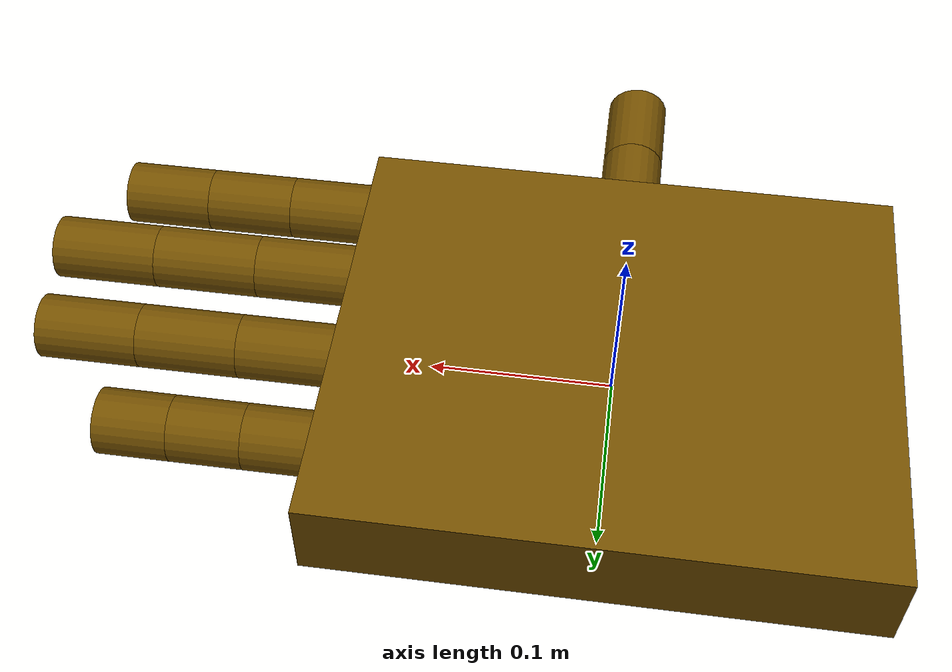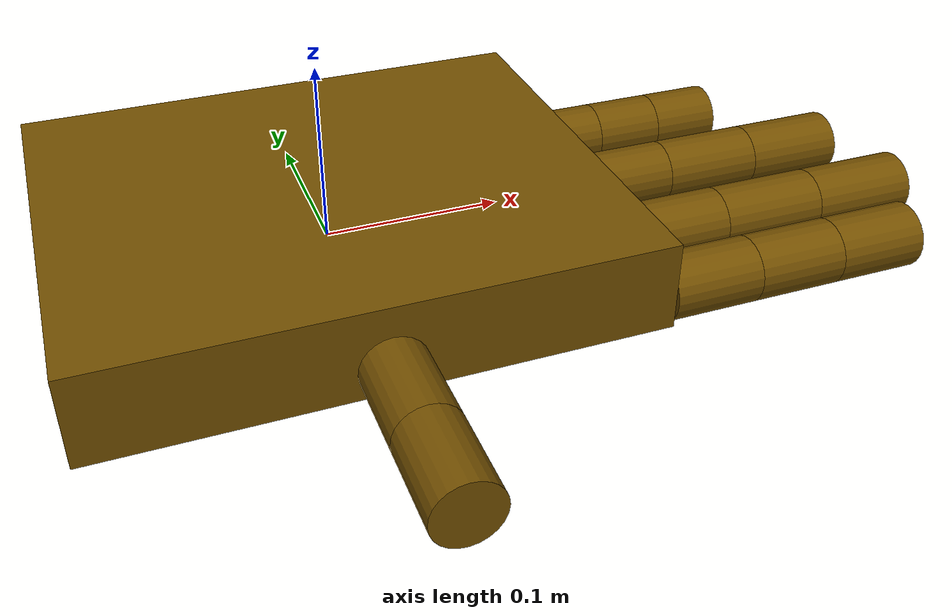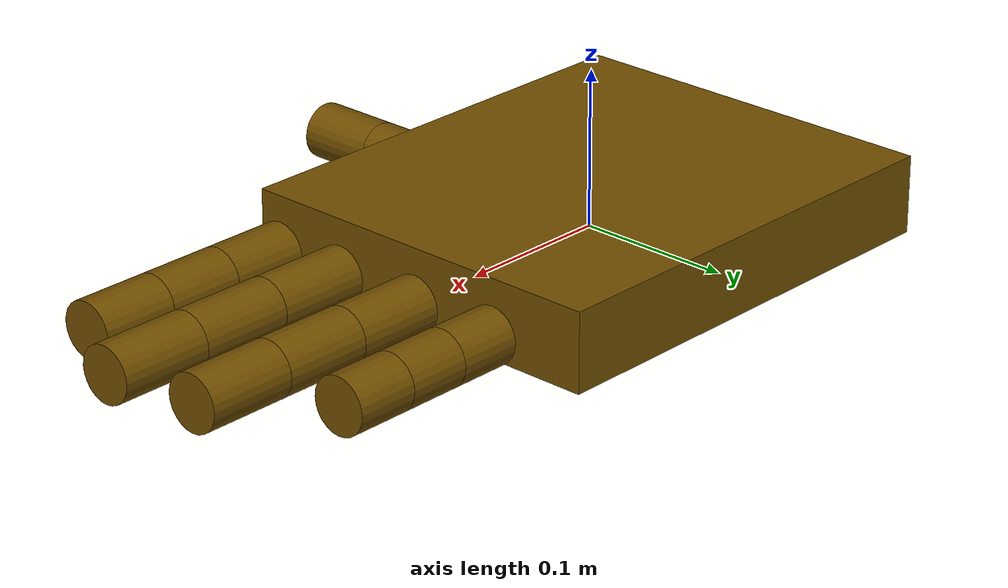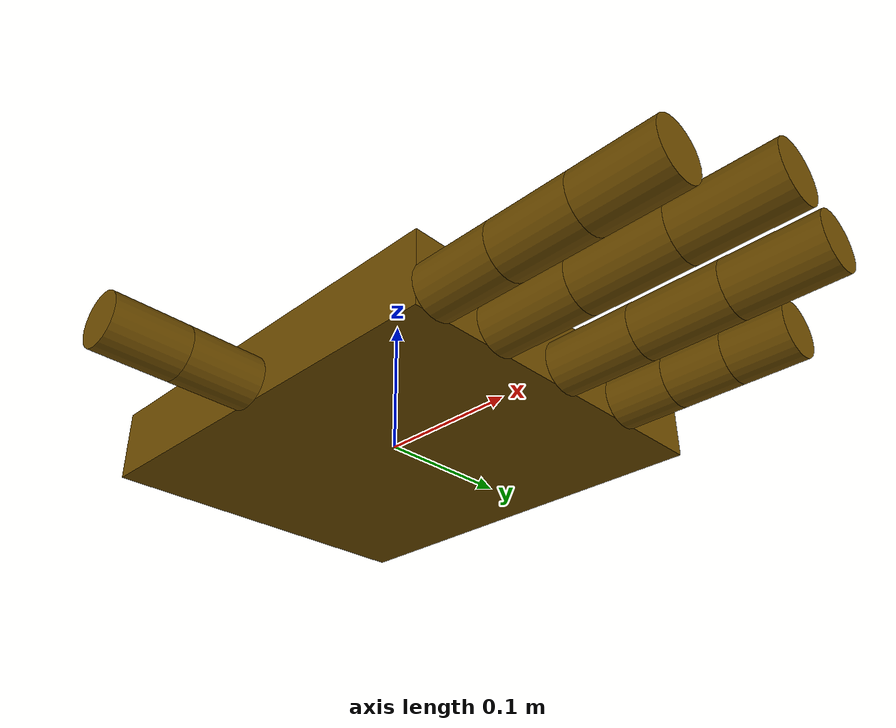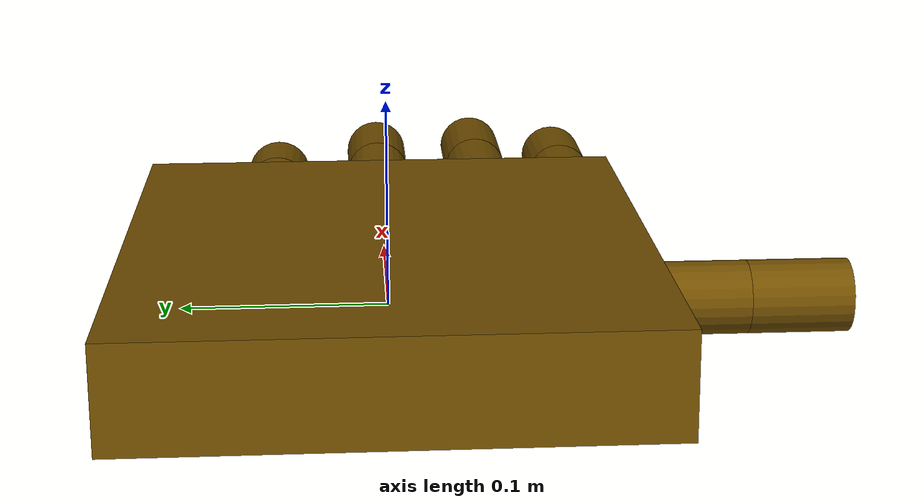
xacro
<?xml version="1.0"?>
<robot name="robotic_hand" xmlns:xacro="http://www.ros.org/wiki/xacro">
        <!-- includes -->
        <xacro:include filename="color_gazebo.xacro" />
        <!-- Variables -->
        <xacro:property name="base_length" value="0.3" />
        <xacro:property name="base_width" value="0.25" />
        <xacro:property name="base_height" value="0.05" />
        <xacro:property name="radius" value="0.018" />
        <xacro:property name="Index_length" value="0.05" />
        <xacro:property name="Middle_length" value="0.06" />
        <xacro:property name="Ring_length" value="0.057" />
        <xacro:property name="Pinky_length" value="0.04" />
        <xacro:property name="Thumb_length" value="0.05" />
        <!-- Macros -->
        <xacro:macro name="base_inertia" params="m l w h xyz rpy">
            <inertial>
                <origin xyz="${xyz}" rpy="${rpy}" />
                <mass value="${m}" />
                <inertia ixx="${(m/12) * (h*h + l*l)}" ixy="0" ixz="0"
                         iyy="${(m/12) * (w*w + l*l)}" iyz="0"
                         izz="${(m/12) * (w*w + h*h)}" />
            </inertial>
        </xacro:macro>

        <xacro:macro name="finger_inertia" params="m r h xyz rpy">
            <inertial>
                <origin xyz="${xyz}" rpy="${rpy}" />
                <mass value="${m}" />
                <inertia ixx="${(m/12) * (3*(r*r) + (h*h))}" ixy="0" ixz="0"
                         iyy="${(m/12) * (3*(r*r) + (h*h))}" iyz="0"
                         izz="${(m/2) * (r*r)}" />
            </inertial>
        </xacro:macro>

        <!-- Common Properties -->
        <material name="Wood">
            <!-- Normalize the color values to [0.0, 1.0] -->
            <color rgba="0.444 0.306 0.0 1.0" />
        </material>

        <!-- =============== Robotic hand =============== -->
        <link name="base_link">
            <visual>
                <geometry>
                    <box size="${base_length} ${base_width} ${base_height}" />
                </geometry>
                <origin xyz="0 0 0.01" rpy="0 0 0" />
                <material name="Wood" />
            </visual>
            <collision>
                <geometry>
                    <box size="${base_length} ${base_width} ${base_height}" />
                </geometry>
                <origin xyz="0 0 0.01" rpy="0 0 0" />
            </collision>
            <xacro:base_inertia m="0.2" l="${base_length}" w="${base_width}" h="${base_height}"
                                xyz="0 0 0.01" rpy="0 0 0" />
        </link>

<!-- Index Finger -->

        <link name="Index1_link">
            <visual>
                <geometry>
                    <cylinder radius="${radius}" length="${Index_length}" />
                </geometry>
                <origin xyz="${Index_length / 2.0} 0 0" rpy="0 ${pi / 2.0} 0" />
                <material name="Wood" />
            </visual>
            <collision>
                <geometry>
                    <cylinder radius="${radius}" length="${Index_length}" />
                </geometry>
                <origin xyz="${Index_length / 2.0} 0 0" rpy="0 ${pi / 2.0} 0" />
            </collision>
            <xacro:finger_inertia m="0.05" r="${radius}" h="${Index_length}"
                                xyz="${Index_length / 2.0} 0 0" rpy="0 ${pi / 2.0} 0" />
        </link>

        <joint name="Index_finger" type="revolute">
            <parent link="base_link" />
            <child link="Index1_link" />
            <origin xyz="${base_length / 2} -0.11 0" rpy="0 0 0" />
            <axis xyz="0 1 0" />
            <limit lower="0" upper="-0.785" effort="100" velocity="100" />
        </joint>

        <link name="Index2_link">
            <visual>
                <geometry>
                    <cylinder radius="${radius}" length="${Index_length}" />
                </geometry>
                <origin xyz="${Index_length / 2.0} 0 0" rpy="0 ${pi / 2.0} 0" />
                <material name="Wood" />
            </visual>
            <collision>
                <geometry>
                    <cylinder radius="${radius}" length="${Index_length}" />
                </geometry>
                <origin xyz="${Index_length / 2.0} 0 0" rpy="0 ${pi / 2.0} 0" />
            </collision>
            <xacro:finger_inertia m="0.05" r="${radius}" h="${Index_length}"
                                xyz="${Index_length / 2.0} 0 0" rpy="0 ${pi / 2.0} 0" />
        </link>

        <joint name="Index1_Index2_joint" type="revolute">
            <parent link="Index1_link" />
            <child link="Index2_link" />
            <origin xyz="${Index_length} 0 0" rpy="0 0 0" />
            <axis xyz="0 1 0" />
            <limit lower="0" upper="-0.785" effort="100" velocity="100" />
            <mimic joint="Index_finger" multiplier="1.0" offset="0.0"/>
        </joint>

        <link name="Index3_link">
            <visual>
                <geometry>
                    <cylinder radius="${radius}" length="${Index_length}" />
                </geometry>
                <origin xyz="${Index_length / 2.0} 0 0" rpy="0 ${pi / 2.0} 0" />
                <material name="Wood" />
            </visual>
            <collision>
                <geometry>
                    <cylinder radius="${radius}" length="${Index_length}" />
                </geometry>
                <origin xyz="${Index_length / 2.0} 0 0" rpy="0 ${pi / 2.0} 0" />
            </collision>
            <xacro:finger_inertia m="0.05" r="${radius}" h="${Index_length}"
                                xyz="${Index_length / 2.0} 0 0" rpy="0 ${pi / 2.0} 0" />
        </link>

        <joint name="Index2_Index3_joint" type="revolute">
            <parent link="Index2_link" />
            <child link="Index3_link" />
            <origin xyz="${Index_length} 0 0" rpy="0 0 0" />
            <axis xyz="0 1 0" />
            <limit lower="0" upper="-0.785" effort="100" velocity="100" />
            <mimic joint="Index_finger" multiplier="1.0" offset="0.0"/>
        </joint>

<!-- Middle Finger -->

        <link name="Middle1_link">
            <visual>
                <geometry>
                    <cylinder radius="${radius}" length="${Middle_length}" />
                </geometry>
                <origin xyz="${Middle_length / 2.0} 0 0" rpy="0 ${pi / 2.0} 0" />
                <material name="Wood" />
            </visual>
            <collision>
                <geometry>
                    <cylinder radius="${radius}" length="${Middle_length}" />
                </geometry>
                <origin xyz="${Middle_length / 2.0} 0 0" rpy="0 ${pi / 2.0} 0" />
            </collision>
            <xacro:finger_inertia m="0.05" r="${radius}" h="${Middle_length}"
                                xyz="${Middle_length / 2.0} 0 0" rpy="0 ${pi / 2.0} 0" />
        </link>

        <joint name="Middle_finger" type="revolute">
            <parent link="base_link" />
            <child link="Middle1_link" />
            <origin xyz="${base_length / 2.0} -0.06 0" rpy="0 0 0" />
            <axis xyz="0 1 0" />
            <limit lower="0" upper="-0.785" effort="100" velocity="100" />
        </joint>

        <link name="Middle2_link">
            <visual>
                <geometry>
                    <cylinder radius="${radius}" length="${Middle_length}" />
                </geometry>
                <origin xyz="${Middle_length /2.0} 0 0" rpy="0 ${pi / 2.0} 0" />
                <material name="Wood" />
            </visual>
            <collision>
                <geometry>
                    <cylinder radius="${radius}" length="${Middle_length}" />
                </geometry>
                <origin xyz="${Middle_length /2.0} 0 0" rpy="0 ${pi / 2.0} 0" />
            </collision>
            <xacro:finger_inertia m="0.05" r="${radius}" h="${Middle_length}"
                                xyz="${Middle_length / 2.0} 0 0" rpy="0 ${pi / 2.0} 0" />
        </link>

        <joint name="Middle1_Middle2_joint" type="revolute">
            <parent link="Middle1_link" />
            <child link="Middle2_link" />
            <origin xyz="${Middle_length} 0 0" rpy="0 0 0" />
            <axis xyz="0 1 0" />
            <limit lower="0" upper="-0.785" effort="100" velocity="100" />
            <mimic joint="Middle_finger" multiplier="1.0" offset="0.0"/>
        </joint>

        <link name="Middle3_link">
            <visual>
                <geometry>
                    <cylinder radius="${radius}" length="${Middle_length}" />
                </geometry>
                <origin xyz="${Middle_length / 2.0} 0 0" rpy="0 ${pi / 2.0} 0" />
                <material name="Wood" />
            </visual>
            <collision>
                <geometry>
                    <cylinder radius="${radius}" length="${Middle_length}" />
                </geometry>
                <origin xyz="${Middle_length / 2.0} 0 0" rpy="0 ${pi / 2.0} 0" />
            </collision>
            <xacro:finger_inertia m="0.05" r="${radius}" h="${Middle_length}"
                                xyz="${Middle_length / 2.0} 0 0" rpy="0 ${pi / 2.0} 0" />
        </link>

        <joint name="Middle2_Middle3_joint" type="revolute">
            <parent link="Middle2_link" />
            <child link="Middle3_link" />
            <origin xyz="${Middle_length} 0 0" rpy="0 0 0" />
            <axis xyz="0 1 0" />
            <limit lower="0" upper="-0.785" effort="100" velocity="100" />
            <mimic joint="Middle_finger" multiplier="1.0" offset="0.0"/>
        </joint>

<!-- Ring Finger -->

        <link name="Ring1_link">
            <visual>
                <geometry>
                    <cylinder radius="${radius}" length="${Ring_length}" />
                </geometry>
                <origin xyz="${Ring_length / 2.0 } 0 0" rpy="0 ${pi / 2.0} 0" />
                <material name="Wood" />
            </visual>
            <collision>
                <geometry>
                    <cylinder radius="${radius}" length="${Ring_length}" />
                </geometry>
                <origin xyz="${Ring_length / 2.0 } 0 0" rpy="0 ${pi / 2.0} 0" />
            </collision>
            <xacro:finger_inertia m="0.05" r="${radius}" h="${Ring_length}"
                                xyz="${Ring_length / 2.0} 0 0" rpy="0 ${pi / 2.0} 0" />
        </link>

        <joint name="Ring_finger" type="revolute">
            <parent link="base_link" />
            <child link="Ring1_link" />
            <origin xyz="${base_length / 2.0} 0 0" rpy="0 0 0" />
            <axis xyz="0 1 0" />
            <limit lower="0" upper="-0.785" effort="100" velocity="100" />
        </joint>

        <link name="Ring2_link">
            <visual>
                <geometry>
                    <cylinder radius="${radius}" length="${Ring_length}" />
                </geometry>
                <origin xyz="${Ring_length / 2.0} 0 0" rpy="0 ${pi / 2.0} 0" />
                <material name="Wood" />
            </visual>
            <collision>
                <geometry>
                    <cylinder radius="${radius}" length="${Ring_length}" />
                </geometry>
                <origin xyz="${Ring_length / 2.0} 0 0" rpy="0 ${pi / 2.0} 0" />
            </collision>
            <xacro:finger_inertia m="0.05" r="${radius}" h="${Ring_length}"
                                xyz="${Ring_length / 2.0} 0 0" rpy="0 ${pi / 2.0} 0" />
        </link>

        <joint name="Ring1_Ring2_joint" type="revolute">
            <parent link="Ring1_link" />
            <child link="Ring2_link" />
            <origin xyz="${Ring_length} 0 0" rpy="0 0 0" />
            <axis xyz="0 1 0" />
            <limit lower="0" upper="-0.785" effort="100" velocity="100" />
            <mimic joint="Ring_finger" multiplier="1.0" offset="0.0"/>
        </joint>

        <link name="Ring3_link">
            <visual>
                <geometry>
                    <cylinder radius="${radius}" length="${Ring_length}" />
                </geometry>
                <origin xyz="${Ring_length / 2} 0 0" rpy="0 ${pi / 2.0} 0" />
                <material name="Wood" />
            </visual>
            <collision>
                <geometry>
                    <cylinder radius="${radius}" length="${Ring_length}" />
                </geometry>
                <origin xyz="${Ring_length / 2} 0 0" rpy="0 ${pi / 2.0} 0" />
            </collision>
            <xacro:finger_inertia m="0.05" r="${radius}" h="${Ring_length}"
                                xyz="${Ring_length / 2.0} 0 0" rpy="0 ${pi / 2.0} 0" />
        </link>

        <joint name="Ring2_Ring3_joint" type="revolute">
            <parent link="Ring2_link" />
            <child link="Ring3_link" />
            <origin xyz="${Ring_length} 0 0" rpy="0 0 0" />
            <axis xyz="0 1 0" />
            <limit lower="0" upper="-0.785" effort="100" velocity="100" />
            <mimic joint="Ring_finger" multiplier="1.0" offset="0.0"/>
        </joint>
<!-- Pinky Finger -->

        <link name="Pinky1_link">
            <visual>
                <geometry>
                    <cylinder radius="${radius}" length="${Pinky_length}" />
                </geometry>
                <origin xyz="${Pinky_length / 2.0} 0 0" rpy="0 ${pi / 2.0} 0" />
                <material name="Wood" />
            </visual>
            <collision>
                <geometry>
                    <cylinder radius="${radius}" length="${Pinky_length}" />
                </geometry>
                <origin xyz="${Pinky_length / 2.0} 0 0" rpy="0 ${pi / 2.0} 0" />
            </collision>
            <xacro:finger_inertia m="0.05" r="${radius}" h="${Pinky_length}"
                                xyz="${Pinky_length / 2.0} 0 0" rpy="0 ${pi / 2.0} 0" />
        </link>

        <joint name="Pinky_finger" type="revolute">
            <parent link="base_link" />
            <child link="Pinky1_link" />
            <origin xyz="${base_length / 2.0} 0.06 0" rpy="0 0 0" />
            <axis xyz="0 1 0" />
            <limit lower="0" upper="-0.785" effort="100" velocity="100" />
        </joint>

        <link name="Pinky2_link">
            <visual>
                <geometry>
                    <cylinder radius="${radius}" length="${Pinky_length}" />
                </geometry>
                <origin xyz="${Pinky_length / 2.0} 0 0" rpy="0 ${pi / 2.0} 0" />
                <material name="Wood" />
            </visual>
            <collision>
                <geometry>
                    <cylinder radius="${radius}" length="${Pinky_length}" />
                </geometry>
                <origin xyz="${Pinky_length / 2.0} 0 0" rpy="0 ${pi / 2.0} 0" />
            </collision>
            <xacro:finger_inertia m="0.05" r="${radius}" h="${Pinky_length}"
                                xyz="${Pinky_length / 2.0} 0 0" rpy="0 ${pi / 2.0} 0" />
        </link>

        <joint name="Pinky1_Pinky2_joint" type="revolute">
            <parent link="Pinky1_link" />
            <child link="Pinky2_link" />
            <origin xyz="${Pinky_length} 0 0" rpy="0 0 0" />
            <axis xyz="0 1 0" />
            <limit lower="0" upper="-0.785" effort="100" velocity="100" />
            <mimic joint="Pinky_finger" multiplier="1.0" offset="0.0"/>
        </joint>

        <link name="Pinky3_link">
            <visual>
                <geometry>
                    <cylinder radius="${radius}" length="${Pinky_length}" />
                </geometry>
                <origin xyz="${Pinky_length / 2.0} 0 0" rpy="0 ${pi / 2.0} 0" />
                <material name="Wood" />
            </visual>
            <collision>
                <geometry>
                    <cylinder radius="${radius}" length="${Pinky_length}" />
                </geometry>
                <origin xyz="${Pinky_length / 2.0} 0 0" rpy="0 ${pi / 2.0} 0" />
            </collision>
            <xacro:finger_inertia m="0.05" r="${radius}" h="${Pinky_length}"
                                xyz="${Pinky_length / 2.0} 0 0" rpy="0 ${pi / 2.0} 0" />
        </link>

        <joint name="Pinky2_Pinky3_joint" type="revolute">
            <parent link="Pinky2_link" />
            <child link="Pinky3_link" />
            <origin xyz="${Pinky_length} 0 0" rpy="0 0 0" />
            <axis xyz="0 1 0" />
            <limit lower="0" upper="-0.785" effort="100" velocity="100" />
            <mimic joint="Pinky_finger" multiplier="1.0" offset="0.0"/>
        </joint>
        <!-- Thumb Finger-->

        <link name="Thumb1_link">
            <visual>
                <geometry>
                    <cylinder radius="${radius}" length="${Thumb_length}"/>
                </geometry>
                <origin xyz="0 -${Thumb_length / 2.0} 0" rpy="${pi / 2} 0 0" />
                <material name="Wood" />
            </visual>
            <collision>
                <geometry>
                    <cylinder radius="${radius}" length="${Thumb_length}"/>
                </geometry>
                <origin xyz="0 -${Thumb_length / 2.0} 0" rpy="${pi / 2} 0 0" />
            </collision>
            <xacro:finger_inertia m="0.05" r="${radius}" h="${Thumb_length}"
                                xyz="0 ${-Thumb_length / 2.0} 0" rpy="${pi / 2.0} 0 0" />
        </link>
        <joint name="Thumb" type="revolute">
            <parent link="base_link" />
            <child link="Thumb1_link" />
            <origin xyz="0 ${-base_width /2.0} 0" rpy="0 0 0" />
            <axis xyz="1 0 0" />
            <limit lower="0" upper="-0.785" effort="100" velocity="100" />
        </joint>

        <link name="Thumb2_link">
            <visual>
                <geometry>
                    <cylinder radius="${radius}" length="${Thumb_length}" />
                </geometry>
                <origin xyz="0 ${-Thumb_length / 2.0} 0" rpy="${pi / 2} 0 0" />
                <material name="Wood" />
            </visual>
            <collision>
                <geometry>
                    <cylinder radius="${radius}" length="${Thumb_length}" />
                </geometry>
                <origin xyz="0 ${-Thumb_length / 2.0} 0" rpy="${pi / 2} 0 0" />
            </collision>
            <xacro:finger_inertia m="0.05" r="${radius}" h="${Thumb_length}"
                                xyz="0 ${-Thumb_length / 2.0} 0" rpy="${pi / 2.0} 0 0" />
        </link>

        <joint name="Thumb1_Thumb2_joint" type="revolute">
            <parent link="Thumb1_link" />
            <child link="Thumb2_link" />
            <origin xyz="0 ${-Thumb_length} 0" rpy="0 0 0" />
            <axis xyz="1 0 0" />
            <limit lower="0" upper="-0.785" effort="100" velocity="100" />
            <mimic joint="Thumb" multiplier="1.0" offset="0.0"/>
        </joint>
</robot>
